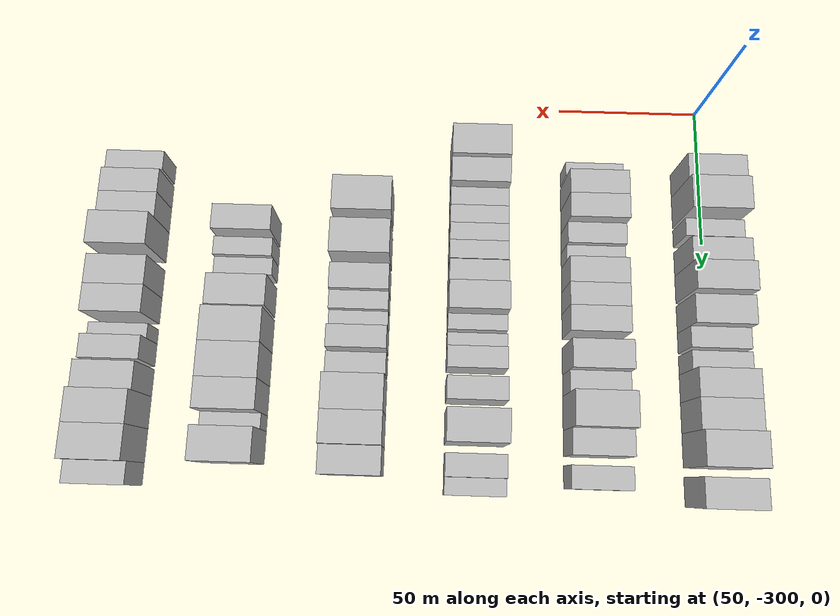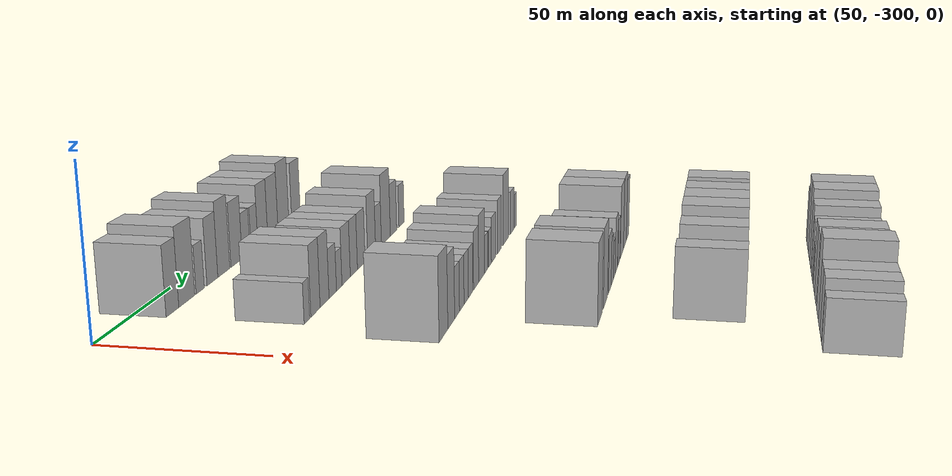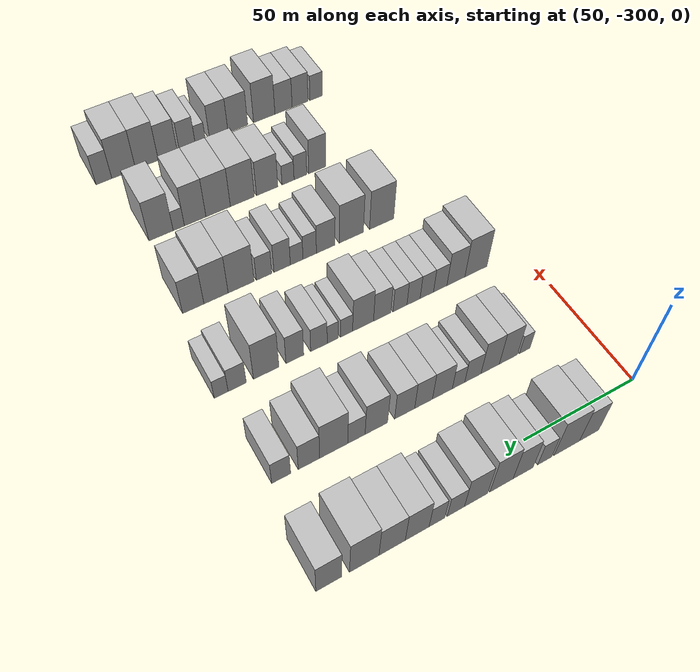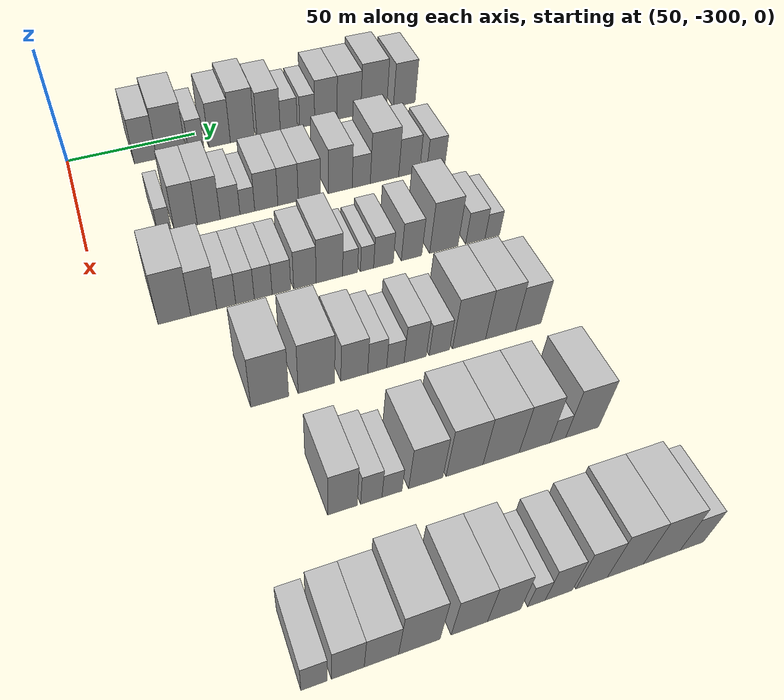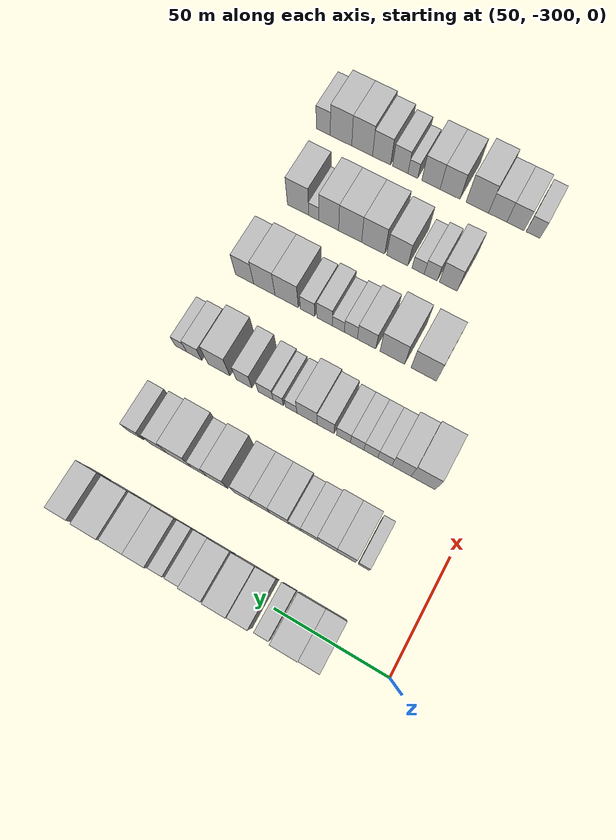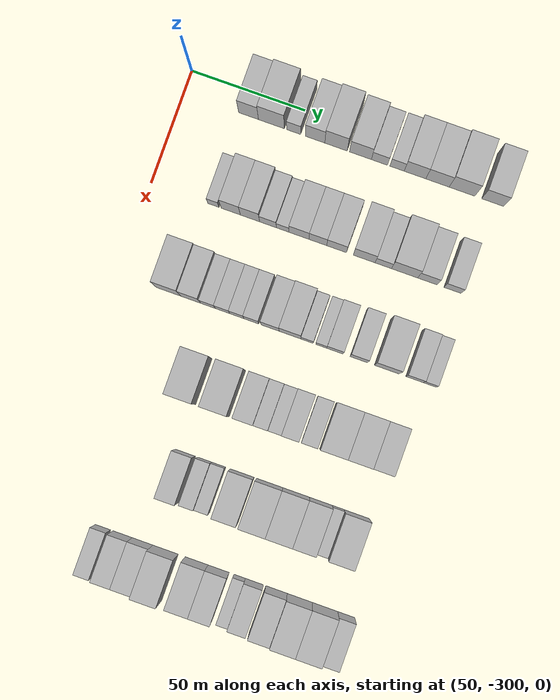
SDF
<sdf version="1.6">
 <world name="default">
  <model name="building_41">
   <static>1</static>
   <pose>50.0000 -271.4610 0 0.000000 0.000000 0.000000</pose>
   <link name="link">
    <pose>0 0 10.50 0 0 0</pose>
    <collision name="collision"><geometry><box><size>20.0000 8.7205 21.0000</size></box></geometry></collision>
    <visual name="visual">
     <cast_shadows>0</cast_shadows>
     <geometry><box><size>20.0000 8.7205 21.0000</size></box></geometry>
     <material>
      <script>
       <uri>model://HANNAS_wall/materials/scripts</uri>
       <uri>model://HANNAS_wall/materials/textures</uri>
       <name>vrc/HANNAS_wall</name>
      </script>
     </material>
    </visual>
   </link>
  </model>
  <model name="building_42">
   <static>1</static>
   <pose>50.0000 -261.3814 0 0.000000 0.000000 0.000000</pose>
   <link name="link">
    <pose>0 0 12.00 0 0 0</pose>
    <collision name="collision"><geometry><box><size>20.0000 11.4386 24.0000</size></box></geometry></collision>
    <visual name="visual">
     <cast_shadows>0</cast_shadows>
     <geometry><box><size>20.0000 11.4386 24.0000</size></box></geometry>
     <material>
      <script>
       <uri>model://HANNAS_wall/materials/scripts</uri>
       <uri>model://HANNAS_wall/materials/textures</uri>
       <name>vrc/HANNAS_wall</name>
      </script>
     </material>
    </visual>
   </link>
  </model>
  <model name="building_43">
   <static>1</static>
   <pose>50.0000 -251.5604 0 0.000000 0.000000 0.000000</pose>
   <link name="link">
    <pose>0 0 7.50 0 0 0</pose>
    <collision name="collision"><geometry><box><size>20.0000 6.2033 15.0000</size></box></geometry></collision>
    <visual name="visual">
     <cast_shadows>0</cast_shadows>
     <geometry><box><size>20.0000 6.2033 15.0000</size></box></geometry>
     <material>
      <script>
       <uri>model://HANNAS_wall/materials/scripts</uri>
       <uri>model://HANNAS_wall/materials/textures</uri>
       <name>vrc/HANNAS_wall</name>
      </script>
     </material>
    </visual>
   </link>
  </model>
  <model name="building_44">
   <static>1</static>
   <pose>50.0000 -242.1434 0 0.000000 0.000000 0.000000</pose>
   <link name="link">
    <pose>0 0 10.50 0 0 0</pose>
    <collision name="collision"><geometry><box><size>20.0000 8.6308 21.0000</size></box></geometry></collision>
    <visual name="visual">
     <cast_shadows>0</cast_shadows>
     <geometry><box><size>20.0000 8.6308 21.0000</size></box></geometry>
     <material>
      <script>
       <uri>model://HANNAS_wall/materials/scripts</uri>
       <uri>model://HANNAS_wall/materials/textures</uri>
       <name>vrc/HANNAS_wall</name>
      </script>
     </material>
    </visual>
   </link>
  </model>
  <model name="building_45">
   <static>1</static>
   <pose>50.0000 -232.9112 0 0.000000 0.000000 0.000000</pose>
   <link name="link">
    <pose>0 0 12.00 0 0 0</pose>
    <collision name="collision"><geometry><box><size>20.0000 9.8335 24.0000</size></box></geometry></collision>
    <visual name="visual">
     <cast_shadows>0</cast_shadows>
     <geometry><box><size>20.0000 9.8335 24.0000</size></box></geometry>
     <material>
      <script>
       <uri>model://HANNAS_wall/materials/scripts</uri>
       <uri>model://HANNAS_wall/materials/textures</uri>
       <name>vrc/HANNAS_wall</name>
      </script>
     </material>
    </visual>
   </link>
  </model>
  <model name="building_46">
   <static>1</static>
   <pose>50.0000 -222.1742 0 0.000000 0.000000 0.000000</pose>
   <link name="link">
    <pose>0 0 10.50 0 0 0</pose>
    <collision name="collision"><geometry><box><size>20.0000 9.6407 21.0000</size></box></geometry></collision>
    <visual name="visual">
     <cast_shadows>0</cast_shadows>
     <geometry><box><size>20.0000 9.6407 21.0000</size></box></geometry>
     <material>
      <script>
       <uri>model://HANNAS_wall/materials/scripts</uri>
       <uri>model://HANNAS_wall/materials/textures</uri>
       <name>vrc/HANNAS_wall</name>
      </script>
     </material>
    </visual>
   </link>
  </model>
  <model name="building_47">
   <static>1</static>
   <pose>50.0000 -213.8160 0 0.000000 0.000000 0.000000</pose>
   <link name="link">
    <pose>0 0 7.50 0 0 0</pose>
    <collision name="collision"><geometry><box><size>20.0000 7.0757 15.0000</size></box></geometry></collision>
    <visual name="visual">
     <cast_shadows>0</cast_shadows>
     <geometry><box><size>20.0000 7.0757 15.0000</size></box></geometry>
     <material>
      <script>
       <uri>model://HANNAS_wall/materials/scripts</uri>
       <uri>model://HANNAS_wall/materials/textures</uri>
       <name>vrc/HANNAS_wall</name>
      </script>
     </material>
    </visual>
   </link>
  </model>
  <model name="building_48">
   <static>1</static>
   <pose>50.0000 -206.1168 0 0.000000 0.000000 0.000000</pose>
   <link name="link">
    <pose>0 0 7.50 0 0 0</pose>
    <collision name="collision"><geometry><box><size>20.0000 6.3227 15.0000</size></box></geometry></collision>
    <visual name="visual">
     <cast_shadows>0</cast_shadows>
     <geometry><box><size>20.0000 6.3227 15.0000</size></box></geometry>
     <material>
      <script>
       <uri>model://HANNAS_wall/materials/scripts</uri>
       <uri>model://HANNAS_wall/materials/textures</uri>
       <name>vrc/HANNAS_wall</name>
      </script>
     </material>
    </visual>
   </link>
  </model>
  <model name="building_49">
   <static>1</static>
   <pose>50.0000 -198.2082 0 0.000000 0.000000 0.000000</pose>
   <link name="link">
    <pose>0 0 10.50 0 0 0</pose>
    <collision name="collision"><geometry><box><size>20.0000 9.4945 21.0000</size></box></geometry></collision>
    <visual name="visual">
     <cast_shadows>0</cast_shadows>
     <geometry><box><size>20.0000 9.4945 21.0000</size></box></geometry>
     <material>
      <script>
       <uri>model://HANNAS_wall/materials/scripts</uri>
       <uri>model://HANNAS_wall/materials/textures</uri>
       <name>vrc/HANNAS_wall</name>
      </script>
     </material>
    </visual>
   </link>
  </model>
  <model name="building_50">
   <static>1</static>
   <pose>50.0000 -188.3169 0 0.000000 0.000000 0.000000</pose>
   <link name="link">
    <pose>0 0 10.50 0 0 0</pose>
    <collision name="collision"><geometry><box><size>20.0000 10.2882 21.0000</size></box></geometry></collision>
    <visual name="visual">
     <cast_shadows>0</cast_shadows>
     <geometry><box><size>20.0000 10.2882 21.0000</size></box></geometry>
     <material>
      <script>
       <uri>model://HANNAS_wall/materials/scripts</uri>
       <uri>model://HANNAS_wall/materials/textures</uri>
       <name>vrc/HANNAS_wall</name>
      </script>
     </material>
    </visual>
   </link>
  </model>
  <model name="building_51">
   <static>1</static>
   <pose>50.0000 -177.5266 0 0.000000 0.000000 0.000000</pose>
   <link name="link">
    <pose>0 0 12.00 0 0 0</pose>
    <collision name="collision"><geometry><box><size>20.0000 11.2924 24.0000</size></box></geometry></collision>
    <visual name="visual">
     <cast_shadows>0</cast_shadows>
     <geometry><box><size>20.0000 11.2924 24.0000</size></box></geometry>
     <material>
      <script>
       <uri>model://HANNAS_wall/materials/scripts</uri>
       <uri>model://HANNAS_wall/materials/textures</uri>
       <name>vrc/HANNAS_wall</name>
      </script>
     </material>
    </visual>
   </link>
  </model>
  <model name="building_52">
   <static>1</static>
   <pose>50.0000 -164.0788 0 0.000000 0.000000 0.000000</pose>
   <link name="link">
    <pose>0 0 10.50 0 0 0</pose>
    <collision name="collision"><geometry><box><size>20.0000 9.6032 21.0000</size></box></geometry></collision>
    <visual name="visual">
     <cast_shadows>0</cast_shadows>
     <geometry><box><size>20.0000 9.6032 21.0000</size></box></geometry>
     <material>
      <script>
       <uri>model://HANNAS_wall/materials/scripts</uri>
       <uri>model://HANNAS_wall/materials/textures</uri>
       <name>vrc/HANNAS_wall</name>
      </script>
     </material>
    </visual>
   </link>
  </model>
  <model name="building_179">
   <static>1</static>
   <pose>90.0000 -272.4818 0 0.000000 0.000000 0.000000</pose>
   <link name="link">
    <pose>0 0 6.00 0 0 0</pose>
    <collision name="collision"><geometry><box><size>20.0000 4.8842 12.0000</size></box></geometry></collision>
    <visual name="visual">
     <cast_shadows>0</cast_shadows>
     <geometry><box><size>20.0000 4.8842 12.0000</size></box></geometry>
     <material>
      <script>
       <uri>model://HANNAS_wall/materials/scripts</uri>
       <uri>model://HANNAS_wall/materials/textures</uri>
       <name>vrc/HANNAS_wall</name>
      </script>
     </material>
    </visual>
   </link>
  </model>
  <model name="building_180">
   <static>1</static>
   <pose>90.0000 -264.8358 0 0.000000 0.000000 0.000000</pose>
   <link name="link">
    <pose>0 0 10.50 0 0 0</pose>
    <collision name="collision"><geometry><box><size>20.0000 8.4078 21.0000</size></box></geometry></collision>
    <visual name="visual">
     <cast_shadows>0</cast_shadows>
     <geometry><box><size>20.0000 8.4078 21.0000</size></box></geometry>
     <material>
      <script>
       <uri>model://HANNAS_wall/materials/scripts</uri>
       <uri>model://HANNAS_wall/materials/textures</uri>
       <name>vrc/HANNAS_wall</name>
      </script>
     </material>
    </visual>
   </link>
  </model>
  <model name="building_181">
   <static>1</static>
   <pose>90.0000 -256.4096 0 0.000000 0.000000 0.000000</pose>
   <link name="link">
    <pose>0 0 10.50 0 0 0</pose>
    <collision name="collision"><geometry><box><size>20.0000 8.4447 21.0000</size></box></geometry></collision>
    <visual name="visual">
     <cast_shadows>0</cast_shadows>
     <geometry><box><size>20.0000 8.4447 21.0000</size></box></geometry>
     <material>
      <script>
       <uri>model://HANNAS_wall/materials/scripts</uri>
       <uri>model://HANNAS_wall/materials/textures</uri>
       <name>vrc/HANNAS_wall</name>
      </script>
     </material>
    </visual>
   </link>
  </model>
  <model name="building_182">
   <static>1</static>
   <pose>90.0000 -248.5168 0 0.000000 0.000000 0.000000</pose>
   <link name="link">
    <pose>0 0 7.50 0 0 0</pose>
    <collision name="collision"><geometry><box><size>20.0000 7.3410 15.0000</size></box></geometry></collision>
    <visual name="visual">
     <cast_shadows>0</cast_shadows>
     <geometry><box><size>20.0000 7.3410 15.0000</size></box></geometry>
     <material>
      <script>
       <uri>model://HANNAS_wall/materials/scripts</uri>
       <uri>model://HANNAS_wall/materials/textures</uri>
       <name>vrc/HANNAS_wall</name>
      </script>
     </material>
    </visual>
   </link>
  </model>
  <model name="building_183">
   <static>1</static>
   <pose>90.0000 -242.0712 0 0.000000 0.000000 0.000000</pose>
   <link name="link">
    <pose>0 0 6.00 0 0 0</pose>
    <collision name="collision"><geometry><box><size>20.0000 5.5502 12.0000</size></box></geometry></collision>
    <visual name="visual">
     <cast_shadows>0</cast_shadows>
     <geometry><box><size>20.0000 5.5502 12.0000</size></box></geometry>
     <material>
      <script>
       <uri>model://HANNAS_wall/materials/scripts</uri>
       <uri>model://HANNAS_wall/materials/textures</uri>
       <name>vrc/HANNAS_wall</name>
      </script>
     </material>
    </visual>
   </link>
  </model>
  <model name="building_184">
   <static>1</static>
   <pose>90.0000 -234.9111 0 0.000000 0.000000 0.000000</pose>
   <link name="link">
    <pose>0 0 9.00 0 0 0</pose>
    <collision name="collision"><geometry><box><size>20.0000 8.7699 18.0000</size></box></geometry></collision>
    <visual name="visual">
     <cast_shadows>0</cast_shadows>
     <geometry><box><size>20.0000 8.7699 18.0000</size></box></geometry>
     <material>
      <script>
       <uri>model://HANNAS_wall/materials/scripts</uri>
       <uri>model://HANNAS_wall/materials/textures</uri>
       <name>vrc/HANNAS_wall</name>
      </script>
     </material>
    </visual>
   </link>
  </model>
  <model name="building_185">
   <static>1</static>
   <pose>90.0000 -226.6335 0 0.000000 0.000000 0.000000</pose>
   <link name="link">
    <pose>0 0 9.00 0 0 0</pose>
    <collision name="collision"><geometry><box><size>20.0000 7.7853 18.0000</size></box></geometry></collision>
    <visual name="visual">
     <cast_shadows>0</cast_shadows>
     <geometry><box><size>20.0000 7.7853 18.0000</size></box></geometry>
     <material>
      <script>
       <uri>model://HANNAS_wall/materials/scripts</uri>
       <uri>model://HANNAS_wall/materials/textures</uri>
       <name>vrc/HANNAS_wall</name>
      </script>
     </material>
    </visual>
   </link>
  </model>
  <model name="building_186">
   <static>1</static>
   <pose>90.0000 -218.4238 0 0.000000 0.000000 0.000000</pose>
   <link name="link">
    <pose>0 0 9.00 0 0 0</pose>
    <collision name="collision"><geometry><box><size>20.0000 8.6341 18.0000</size></box></geometry></collision>
    <visual name="visual">
     <cast_shadows>0</cast_shadows>
     <geometry><box><size>20.0000 8.6341 18.0000</size></box></geometry>
     <material>
      <script>
       <uri>model://HANNAS_wall/materials/scripts</uri>
       <uri>model://HANNAS_wall/materials/textures</uri>
       <name>vrc/HANNAS_wall</name>
      </script>
     </material>
    </visual>
   </link>
  </model>
  <model name="building_187">
   <static>1</static>
   <pose>90.0000 -206.3648 0 0.000000 0.000000 0.000000</pose>
   <link name="link">
    <pose>0 0 10.50 0 0 0</pose>
    <collision name="collision"><geometry><box><size>20.0000 9.4840 21.0000</size></box></geometry></collision>
    <visual name="visual">
     <cast_shadows>0</cast_shadows>
     <geometry><box><size>20.0000 9.4840 21.0000</size></box></geometry>
     <material>
      <script>
       <uri>model://HANNAS_wall/materials/scripts</uri>
       <uri>model://HANNAS_wall/materials/textures</uri>
       <name>vrc/HANNAS_wall</name>
      </script>
     </material>
    </visual>
   </link>
  </model>
  <model name="building_188">
   <static>1</static>
   <pose>90.0000 -198.0180 0 0.000000 0.000000 0.000000</pose>
   <link name="link">
    <pose>0 0 7.50 0 0 0</pose>
    <collision name="collision"><geometry><box><size>20.0000 7.2096 15.0000</size></box></geometry></collision>
    <visual name="visual">
     <cast_shadows>0</cast_shadows>
     <geometry><box><size>20.0000 7.2096 15.0000</size></box></geometry>
     <material>
      <script>
       <uri>model://HANNAS_wall/materials/scripts</uri>
       <uri>model://HANNAS_wall/materials/textures</uri>
       <name>vrc/HANNAS_wall</name>
      </script>
     </material>
    </visual>
   </link>
  </model>
  <model name="building_189">
   <static>1</static>
   <pose>90.0000 -188.6797 0 0.000000 0.000000 0.000000</pose>
   <link name="link">
    <pose>0 0 12.00 0 0 0</pose>
    <collision name="collision"><geometry><box><size>20.0000 11.4671 24.0000</size></box></geometry></collision>
    <visual name="visual">
     <cast_shadows>0</cast_shadows>
     <geometry><box><size>20.0000 11.4671 24.0000</size></box></geometry>
     <material>
      <script>
       <uri>model://HANNAS_wall/materials/scripts</uri>
       <uri>model://HANNAS_wall/materials/textures</uri>
       <name>vrc/HANNAS_wall</name>
      </script>
     </material>
    </visual>
   </link>
  </model>
  <model name="building_190">
   <static>1</static>
   <pose>90.0000 -178.6611 0 0.000000 0.000000 0.000000</pose>
   <link name="link">
    <pose>0 0 9.00 0 0 0</pose>
    <collision name="collision"><geometry><box><size>20.0000 8.5700 18.0000</size></box></geometry></collision>
    <visual name="visual">
     <cast_shadows>0</cast_shadows>
     <geometry><box><size>20.0000 8.5700 18.0000</size></box></geometry>
     <material>
      <script>
       <uri>model://HANNAS_wall/materials/scripts</uri>
       <uri>model://HANNAS_wall/materials/textures</uri>
       <name>vrc/HANNAS_wall</name>
      </script>
     </material>
    </visual>
   </link>
  </model>
  <model name="building_191">
   <static>1</static>
   <pose>90.0000 -167.6367 0 0.000000 0.000000 0.000000</pose>
   <link name="link">
    <pose>0 0 7.50 0 0 0</pose>
    <collision name="collision"><geometry><box><size>20.0000 7.4789 15.0000</size></box></geometry></collision>
    <visual name="visual">
     <cast_shadows>0</cast_shadows>
     <geometry><box><size>20.0000 7.4789 15.0000</size></box></geometry>
     <material>
      <script>
       <uri>model://HANNAS_wall/materials/scripts</uri>
       <uri>model://HANNAS_wall/materials/textures</uri>
       <name>vrc/HANNAS_wall</name>
      </script>
     </material>
    </visual>
   </link>
  </model>
  <model name="building_312">
   <static>1</static>
   <pose>130.0000 -277.7160 0 0.000000 0.000000 0.000000</pose>
   <link name="link">
    <pose>0 0 12.00 0 0 0</pose>
    <collision name="collision"><geometry><box><size>20.0000 10.7819 24.0000</size></box></geometry></collision>
    <visual name="visual">
     <cast_shadows>0</cast_shadows>
     <geometry><box><size>20.0000 10.7819 24.0000</size></box></geometry>
     <material>
      <script>
       <uri>model://HANNAS_wall/materials/scripts</uri>
       <uri>model://HANNAS_wall/materials/textures</uri>
       <name>vrc/HANNAS_wall</name>
      </script>
     </material>
    </visual>
   </link>
  </model>
  <model name="building_313">
   <static>1</static>
   <pose>130.0000 -267.9741 0 0.000000 0.000000 0.000000</pose>
   <link name="link">
    <pose>0 0 10.50 0 0 0</pose>
    <collision name="collision"><geometry><box><size>20.0000 8.7020 21.0000</size></box></geometry></collision>
    <visual name="visual">
     <cast_shadows>0</cast_shadows>
     <geometry><box><size>20.0000 8.7020 21.0000</size></box></geometry>
     <material>
      <script>
       <uri>model://HANNAS_wall/materials/scripts</uri>
       <uri>model://HANNAS_wall/materials/textures</uri>
       <name>vrc/HANNAS_wall</name>
      </script>
     </material>
    </visual>
   </link>
  </model>
  <model name="building_314">
   <static>1</static>
   <pose>130.0000 -260.4060 0 0.000000 0.000000 0.000000</pose>
   <link name="link">
    <pose>0 0 7.50 0 0 0</pose>
    <collision name="collision"><geometry><box><size>20.0000 6.4342 15.0000</size></box></geometry></collision>
    <visual name="visual">
     <cast_shadows>0</cast_shadows>
     <geometry><box><size>20.0000 6.4342 15.0000</size></box></geometry>
     <material>
      <script>
       <uri>model://HANNAS_wall/materials/scripts</uri>
       <uri>model://HANNAS_wall/materials/textures</uri>
       <name>vrc/HANNAS_wall</name>
      </script>
     </material>
    </visual>
   </link>
  </model>
  <model name="building_315">
   <static>1</static>
   <pose>130.0000 -254.0186 0 0.000000 0.000000 0.000000</pose>
   <link name="link">
    <pose>0 0 7.50 0 0 0</pose>
    <collision name="collision"><geometry><box><size>20.0000 6.3407 15.0000</size></box></geometry></collision>
    <visual name="visual">
     <cast_shadows>0</cast_shadows>
     <geometry><box><size>20.0000 6.3407 15.0000</size></box></geometry>
     <material>
      <script>
       <uri>model://HANNAS_wall/materials/scripts</uri>
       <uri>model://HANNAS_wall/materials/textures</uri>
       <name>vrc/HANNAS_wall</name>
      </script>
     </material>
    </visual>
   </link>
  </model>
  <model name="building_316">
   <static>1</static>
   <pose>130.0000 -247.7734 0 0.000000 0.000000 0.000000</pose>
   <link name="link">
    <pose>0 0 7.50 0 0 0</pose>
    <collision name="collision"><geometry><box><size>20.0000 6.1497 15.0000</size></box></geometry></collision>
    <visual name="visual">
     <cast_shadows>0</cast_shadows>
     <geometry><box><size>20.0000 6.1497 15.0000</size></box></geometry>
     <material>
      <script>
       <uri>model://HANNAS_wall/materials/scripts</uri>
       <uri>model://HANNAS_wall/materials/textures</uri>
       <name>vrc/HANNAS_wall</name>
      </script>
     </material>
    </visual>
   </link>
  </model>
  <model name="building_317">
   <static>1</static>
   <pose>130.0000 -241.4448 0 0.000000 0.000000 0.000000</pose>
   <link name="link">
    <pose>0 0 7.50 0 0 0</pose>
    <collision name="collision"><geometry><box><size>20.0000 6.5075 15.0000</size></box></geometry></collision>
    <visual name="visual">
     <cast_shadows>0</cast_shadows>
     <geometry><box><size>20.0000 6.5075 15.0000</size></box></geometry>
     <material>
      <script>
       <uri>model://HANNAS_wall/materials/scripts</uri>
       <uri>model://HANNAS_wall/materials/textures</uri>
       <name>vrc/HANNAS_wall</name>
      </script>
     </material>
    </visual>
   </link>
  </model>
  <model name="building_318">
   <static>1</static>
   <pose>130.0000 -233.2370 0 0.000000 0.000000 0.000000</pose>
   <link name="link">
    <pose>0 0 9.00 0 0 0</pose>
    <collision name="collision"><geometry><box><size>20.0000 7.9081 18.0000</size></box></geometry></collision>
    <visual name="visual">
     <cast_shadows>0</cast_shadows>
     <geometry><box><size>20.0000 7.9081 18.0000</size></box></geometry>
     <material>
      <script>
       <uri>model://HANNAS_wall/materials/scripts</uri>
       <uri>model://HANNAS_wall/materials/textures</uri>
       <name>vrc/HANNAS_wall</name>
      </script>
     </material>
    </visual>
   </link>
  </model>
  <model name="building_319">
   <static>1</static>
   <pose>130.0000 -224.5493 0 0.000000 0.000000 0.000000</pose>
   <link name="link">
    <pose>0 0 10.50 0 0 0</pose>
    <collision name="collision"><geometry><box><size>20.0000 9.4673 21.0000</size></box></geometry></collision>
    <visual name="visual">
     <cast_shadows>0</cast_shadows>
     <geometry><box><size>20.0000 9.4673 21.0000</size></box></geometry>
     <material>
      <script>
       <uri>model://HANNAS_wall/materials/scripts</uri>
       <uri>model://HANNAS_wall/materials/textures</uri>
       <name>vrc/HANNAS_wall</name>
      </script>
     </material>
    </visual>
   </link>
  </model>
  <model name="building_320">
   <static>1</static>
   <pose>130.0000 -217.0905 0 0.000000 0.000000 0.000000</pose>
   <link name="link">
    <pose>0 0 6.00 0 0 0</pose>
    <collision name="collision"><geometry><box><size>20.0000 5.4501 12.0000</size></box></geometry></collision>
    <visual name="visual">
     <cast_shadows>0</cast_shadows>
     <geometry><box><size>20.0000 5.4501 12.0000</size></box></geometry>
     <material>
      <script>
       <uri>model://HANNAS_wall/materials/scripts</uri>
       <uri>model://HANNAS_wall/materials/textures</uri>
       <name>vrc/HANNAS_wall</name>
      </script>
     </material>
    </visual>
   </link>
  </model>
  <model name="building_321">
   <static>1</static>
   <pose>130.0000 -210.9548 0 0.000000 0.000000 0.000000</pose>
   <link name="link">
    <pose>0 0 6.00 0 0 0</pose>
    <collision name="collision"><geometry><box><size>20.0000 4.8213 12.0000</size></box></geometry></collision>
    <visual name="visual">
     <cast_shadows>0</cast_shadows>
     <geometry><box><size>20.0000 4.8213 12.0000</size></box></geometry>
     <material>
      <script>
       <uri>model://HANNAS_wall/materials/scripts</uri>
       <uri>model://HANNAS_wall/materials/textures</uri>
       <name>vrc/HANNAS_wall</name>
      </script>
     </material>
    </visual>
   </link>
  </model>
  <model name="building_322">
   <static>1</static>
   <pose>130.0000 -204.9297 0 0.000000 0.000000 0.000000</pose>
   <link name="link">
    <pose>0 0 7.50 0 0 0</pose>
    <collision name="collision"><geometry><box><size>20.0000 7.2290 15.0000</size></box></geometry></collision>
    <visual name="visual">
     <cast_shadows>0</cast_shadows>
     <geometry><box><size>20.0000 7.2290 15.0000</size></box></geometry>
     <material>
      <script>
       <uri>model://HANNAS_wall/materials/scripts</uri>
       <uri>model://HANNAS_wall/materials/textures</uri>
       <name>vrc/HANNAS_wall</name>
      </script>
     </material>
    </visual>
   </link>
  </model>
  <model name="building_323">
   <static>1</static>
   <pose>130.0000 -194.5045 0 0.000000 0.000000 0.000000</pose>
   <link name="link">
    <pose>0 0 9.00 0 0 0</pose>
    <collision name="collision"><geometry><box><size>20.0000 7.6215 18.0000</size></box></geometry></collision>
    <visual name="visual">
     <cast_shadows>0</cast_shadows>
     <geometry><box><size>20.0000 7.6215 18.0000</size></box></geometry>
     <material>
      <script>
       <uri>model://HANNAS_wall/materials/scripts</uri>
       <uri>model://HANNAS_wall/materials/textures</uri>
       <name>vrc/HANNAS_wall</name>
      </script>
     </material>
    </visual>
   </link>
  </model>
  <model name="building_324">
   <static>1</static>
   <pose>130.0000 -182.3283 0 0.000000 0.000000 0.000000</pose>
   <link name="link">
    <pose>0 0 12.00 0 0 0</pose>
    <collision name="collision"><geometry><box><size>20.0000 10.7308 24.0000</size></box></geometry></collision>
    <visual name="visual">
     <cast_shadows>0</cast_shadows>
     <geometry><box><size>20.0000 10.7308 24.0000</size></box></geometry>
     <material>
      <script>
       <uri>model://HANNAS_wall/materials/scripts</uri>
       <uri>model://HANNAS_wall/materials/textures</uri>
       <name>vrc/HANNAS_wall</name>
      </script>
     </material>
    </visual>
   </link>
  </model>
  <model name="building_325">
   <static>1</static>
   <pose>130.0000 -170.2242 0 0.000000 0.000000 0.000000</pose>
   <link name="link">
    <pose>0 0 7.50 0 0 0</pose>
    <collision name="collision"><geometry><box><size>20.0000 7.4775 15.0000</size></box></geometry></collision>
    <visual name="visual">
     <cast_shadows>0</cast_shadows>
     <geometry><box><size>20.0000 7.4775 15.0000</size></box></geometry>
     <material>
      <script>
       <uri>model://HANNAS_wall/materials/scripts</uri>
       <uri>model://HANNAS_wall/materials/textures</uri>
       <name>vrc/HANNAS_wall</name>
      </script>
     </material>
    </visual>
   </link>
  </model>
  <model name="building_326">
   <static>1</static>
   <pose>130.0000 -163.6379 0 0.000000 0.000000 0.000000</pose>
   <link name="link">
    <pose>0 0 6.00 0 0 0</pose>
    <collision name="collision"><geometry><box><size>20.0000 5.6953 12.0000</size></box></geometry></collision>
    <visual name="visual">
     <cast_shadows>0</cast_shadows>
     <geometry><box><size>20.0000 5.6953 12.0000</size></box></geometry>
     <material>
      <script>
       <uri>model://HANNAS_wall/materials/scripts</uri>
       <uri>model://HANNAS_wall/materials/textures</uri>
       <name>vrc/HANNAS_wall</name>
      </script>
     </material>
    </visual>
   </link>
  </model>
  <model name="building_438">
   <static>1</static>
   <pose>170.0000 -257.3850 0 0.000000 0.000000 0.000000</pose>
   <link name="link">
    <pose>0 0 12.00 0 0 0</pose>
    <collision name="collision"><geometry><box><size>20.0000 11.8549 24.0000</size></box></geometry></collision>
    <visual name="visual">
     <cast_shadows>0</cast_shadows>
     <geometry><box><size>20.0000 11.8549 24.0000</size></box></geometry>
     <material>
      <script>
       <uri>model://HANNAS_wall/materials/scripts</uri>
       <uri>model://HANNAS_wall/materials/textures</uri>
       <name>vrc/HANNAS_wall</name>
      </script>
     </material>
    </visual>
   </link>
  </model>
  <model name="building_439">
   <static>1</static>
   <pose>170.0000 -242.6180 0 0.000000 0.000000 0.000000</pose>
   <link name="link">
    <pose>0 0 12.00 0 0 0</pose>
    <collision name="collision"><geometry><box><size>20.0000 11.6791 24.0000</size></box></geometry></collision>
    <visual name="visual">
     <cast_shadows>0</cast_shadows>
     <geometry><box><size>20.0000 11.6791 24.0000</size></box></geometry>
     <material>
      <script>
       <uri>model://HANNAS_wall/materials/scripts</uri>
       <uri>model://HANNAS_wall/materials/textures</uri>
       <name>vrc/HANNAS_wall</name>
      </script>
     </material>
    </visual>
   </link>
  </model>
  <model name="building_440">
   <static>1</static>
   <pose>170.0000 -230.3833 0 0.000000 0.000000 0.000000</pose>
   <link name="link">
    <pose>0 0 9.00 0 0 0</pose>
    <collision name="collision"><geometry><box><size>20.0000 8.7902 18.0000</size></box></geometry></collision>
    <visual name="visual">
     <cast_shadows>0</cast_shadows>
     <geometry><box><size>20.0000 8.7902 18.0000</size></box></geometry>
     <material>
      <script>
       <uri>model://HANNAS_wall/materials/scripts</uri>
       <uri>model://HANNAS_wall/materials/textures</uri>
       <name>vrc/HANNAS_wall</name>
      </script>
     </material>
    </visual>
   </link>
  </model>
  <model name="building_441">
   <static>1</static>
   <pose>170.0000 -222.8478 0 0.000000 0.000000 0.000000</pose>
   <link name="link">
    <pose>0 0 7.50 0 0 0</pose>
    <collision name="collision"><geometry><box><size>20.0000 6.2807 15.0000</size></box></geometry></collision>
    <visual name="visual">
     <cast_shadows>0</cast_shadows>
     <geometry><box><size>20.0000 6.2807 15.0000</size></box></geometry>
     <material>
      <script>
       <uri>model://HANNAS_wall/materials/scripts</uri>
       <uri>model://HANNAS_wall/materials/textures</uri>
       <name>vrc/HANNAS_wall</name>
      </script>
     </material>
    </visual>
   </link>
  </model>
  <model name="building_442">
   <static>1</static>
   <pose>170.0000 -216.7918 0 0.000000 0.000000 0.000000</pose>
   <link name="link">
    <pose>0 0 6.00 0 0 0</pose>
    <collision name="collision"><geometry><box><size>20.0000 5.8314 12.0000</size></box></geometry></collision>
    <visual name="visual">
     <cast_shadows>0</cast_shadows>
     <geometry><box><size>20.0000 5.8314 12.0000</size></box></geometry>
     <material>
      <script>
       <uri>model://HANNAS_wall/materials/scripts</uri>
       <uri>model://HANNAS_wall/materials/textures</uri>
       <name>vrc/HANNAS_wall</name>
      </script>
     </material>
    </visual>
   </link>
  </model>
  <model name="building_443">
   <static>1</static>
   <pose>170.0000 -210.1128 0 0.000000 0.000000 0.000000</pose>
   <link name="link">
    <pose>0 0 9.00 0 0 0</pose>
    <collision name="collision"><geometry><box><size>20.0000 7.5265 18.0000</size></box></geometry></collision>
    <visual name="visual">
     <cast_shadows>0</cast_shadows>
     <geometry><box><size>20.0000 7.5265 18.0000</size></box></geometry>
     <material>
      <script>
       <uri>model://HANNAS_wall/materials/scripts</uri>
       <uri>model://HANNAS_wall/materials/textures</uri>
       <name>vrc/HANNAS_wall</name>
      </script>
     </material>
    </visual>
   </link>
  </model>
  <model name="building_444">
   <static>1</static>
   <pose>170.0000 -201.8534 0 0.000000 0.000000 0.000000</pose>
   <link name="link">
    <pose>0 0 7.50 0 0 0</pose>
    <collision name="collision"><geometry><box><size>20.0000 6.9923 15.0000</size></box></geometry></collision>
    <visual name="visual">
     <cast_shadows>0</cast_shadows>
     <geometry><box><size>20.0000 6.9923 15.0000</size></box></geometry>
     <material>
      <script>
       <uri>model://HANNAS_wall/materials/scripts</uri>
       <uri>model://HANNAS_wall/materials/textures</uri>
       <name>vrc/HANNAS_wall</name>
      </script>
     </material>
    </visual>
   </link>
  </model>
  <model name="building_445">
   <static>1</static>
   <pose>170.0000 -191.5840 0 0.000000 0.000000 0.000000</pose>
   <link name="link">
    <pose>0 0 12.00 0 0 0</pose>
    <collision name="collision"><geometry><box><size>20.0000 11.5464 24.0000</size></box></geometry></collision>
    <visual name="visual">
     <cast_shadows>0</cast_shadows>
     <geometry><box><size>20.0000 11.5464 24.0000</size></box></geometry>
     <material>
      <script>
       <uri>model://HANNAS_wall/materials/scripts</uri>
       <uri>model://HANNAS_wall/materials/textures</uri>
       <name>vrc/HANNAS_wall</name>
      </script>
     </material>
    </visual>
   </link>
  </model>
  <model name="building_446">
   <static>1</static>
   <pose>170.0000 -180.5014 0 0.000000 0.000000 0.000000</pose>
   <link name="link">
    <pose>0 0 12.00 0 0 0</pose>
    <collision name="collision"><geometry><box><size>20.0000 10.6188 24.0000</size></box></geometry></collision>
    <visual name="visual">
     <cast_shadows>0</cast_shadows>
     <geometry><box><size>20.0000 10.6188 24.0000</size></box></geometry>
     <material>
      <script>
       <uri>model://HANNAS_wall/materials/scripts</uri>
       <uri>model://HANNAS_wall/materials/textures</uri>
       <name>vrc/HANNAS_wall</name>
      </script>
     </material>
    </visual>
   </link>
  </model>
  <model name="building_447">
   <static>1</static>
   <pose>170.0000 -170.5951 0 0.000000 0.000000 0.000000</pose>
   <link name="link">
    <pose>0 0 10.50 0 0 0</pose>
    <collision name="collision"><geometry><box><size>20.0000 9.1938 21.0000</size></box></geometry></collision>
    <visual name="visual">
     <cast_shadows>0</cast_shadows>
     <geometry><box><size>20.0000 9.1938 21.0000</size></box></geometry>
     <material>
      <script>
       <uri>model://HANNAS_wall/materials/scripts</uri>
       <uri>model://HANNAS_wall/materials/textures</uri>
       <name>vrc/HANNAS_wall</name>
      </script>
     </material>
    </visual>
   </link>
  </model>
  <model name="building_567">
   <static>1</static>
   <pose>210.0000 -248.6076 0 0.000000 0.000000 0.000000</pose>
   <link name="link">
    <pose>0 0 10.50 0 0 0</pose>
    <collision name="collision"><geometry><box><size>20.0000 8.5886 21.0000</size></box></geometry></collision>
    <visual name="visual">
     <cast_shadows>0</cast_shadows>
     <geometry><box><size>20.0000 8.5886 21.0000</size></box></geometry>
     <material>
      <script>
       <uri>model://HANNAS_wall/materials/scripts</uri>
       <uri>model://HANNAS_wall/materials/textures</uri>
       <name>vrc/HANNAS_wall</name>
      </script>
     </material>
    </visual>
   </link>
  </model>
  <model name="building_568">
   <static>1</static>
   <pose>210.0000 -240.1623 0 0.000000 0.000000 0.000000</pose>
   <link name="link">
    <pose>0 0 7.50 0 0 0</pose>
    <collision name="collision"><geometry><box><size>20.0000 6.3021 15.0000</size></box></geometry></collision>
    <visual name="visual">
     <cast_shadows>0</cast_shadows>
     <geometry><box><size>20.0000 6.3021 15.0000</size></box></geometry>
     <material>
      <script>
       <uri>model://HANNAS_wall/materials/scripts</uri>
       <uri>model://HANNAS_wall/materials/textures</uri>
       <name>vrc/HANNAS_wall</name>
      </script>
     </material>
    </visual>
   </link>
  </model>
  <model name="building_569">
   <static>1</static>
   <pose>210.0000 -234.0338 0 0.000000 0.000000 0.000000</pose>
   <link name="link">
    <pose>0 0 6.00 0 0 0</pose>
    <collision name="collision"><geometry><box><size>20.0000 5.9550 12.0000</size></box></geometry></collision>
    <visual name="visual">
     <cast_shadows>0</cast_shadows>
     <geometry><box><size>20.0000 5.9550 12.0000</size></box></geometry>
     <material>
      <script>
       <uri>model://HANNAS_wall/materials/scripts</uri>
       <uri>model://HANNAS_wall/materials/textures</uri>
       <name>vrc/HANNAS_wall</name>
      </script>
     </material>
    </visual>
   </link>
  </model>
  <model name="building_570">
   <static>1</static>
   <pose>210.0000 -223.8573 0 0.000000 0.000000 0.000000</pose>
   <link name="link">
    <pose>0 0 10.50 0 0 0</pose>
    <collision name="collision"><geometry><box><size>20.0000 10.3980 21.0000</size></box></geometry></collision>
    <visual name="visual">
     <cast_shadows>0</cast_shadows>
     <geometry><box><size>20.0000 10.3980 21.0000</size></box></geometry>
     <material>
      <script>
       <uri>model://HANNAS_wall/materials/scripts</uri>
       <uri>model://HANNAS_wall/materials/textures</uri>
       <name>vrc/HANNAS_wall</name>
      </script>
     </material>
    </visual>
   </link>
  </model>
  <model name="building_571">
   <static>1</static>
   <pose>210.0000 -211.9260 0 0.000000 0.000000 0.000000</pose>
   <link name="link">
    <pose>0 0 12.00 0 0 0</pose>
    <collision name="collision"><geometry><box><size>20.0000 11.4645 24.0000</size></box></geometry></collision>
    <visual name="visual">
     <cast_shadows>0</cast_shadows>
     <geometry><box><size>20.0000 11.4645 24.0000</size></box></geometry>
     <material>
      <script>
       <uri>model://HANNAS_wall/materials/scripts</uri>
       <uri>model://HANNAS_wall/materials/textures</uri>
       <name>vrc/HANNAS_wall</name>
      </script>
     </material>
    </visual>
   </link>
  </model>
  <model name="building_572">
   <static>1</static>
   <pose>210.0000 -200.4536 0 0.000000 0.000000 0.000000</pose>
   <link name="link">
    <pose>0 0 12.00 0 0 0</pose>
    <collision name="collision"><geometry><box><size>20.0000 11.4803 24.0000</size></box></geometry></collision>
    <visual name="visual">
     <cast_shadows>0</cast_shadows>
     <geometry><box><size>20.0000 11.4803 24.0000</size></box></geometry>
     <material>
      <script>
       <uri>model://HANNAS_wall/materials/scripts</uri>
       <uri>model://HANNAS_wall/materials/textures</uri>
       <name>vrc/HANNAS_wall</name>
      </script>
     </material>
    </visual>
   </link>
  </model>
  <model name="building_573">
   <static>1</static>
   <pose>210.0000 -189.7488 0 0.000000 0.000000 0.000000</pose>
   <link name="link">
    <pose>0 0 12.00 0 0 0</pose>
    <collision name="collision"><geometry><box><size>20.0000 9.9294 24.0000</size></box></geometry></collision>
    <visual name="visual">
     <cast_shadows>0</cast_shadows>
     <geometry><box><size>20.0000 9.9294 24.0000</size></box></geometry>
     <material>
      <script>
       <uri>model://HANNAS_wall/materials/scripts</uri>
       <uri>model://HANNAS_wall/materials/textures</uri>
       <name>vrc/HANNAS_wall</name>
      </script>
     </material>
    </visual>
   </link>
  </model>
  <model name="building_574">
   <static>1</static>
   <pose>210.0000 -182.2075 0 0.000000 0.000000 0.000000</pose>
   <link name="link">
    <pose>0 0 6.00 0 0 0</pose>
    <collision name="collision"><geometry><box><size>20.0000 5.1531 12.0000</size></box></geometry></collision>
    <visual name="visual">
     <cast_shadows>0</cast_shadows>
     <geometry><box><size>20.0000 5.1531 12.0000</size></box></geometry>
     <material>
      <script>
       <uri>model://HANNAS_wall/materials/scripts</uri>
       <uri>model://HANNAS_wall/materials/textures</uri>
       <name>vrc/HANNAS_wall</name>
      </script>
     </material>
    </visual>
   </link>
  </model>
  <model name="building_575">
   <static>1</static>
   <pose>210.0000 -174.1619 0 0.000000 0.000000 0.000000</pose>
   <link name="link">
    <pose>0 0 12.00 0 0 0</pose>
    <collision name="collision"><geometry><box><size>20.0000 10.9380 24.0000</size></box></geometry></collision>
    <visual name="visual">
     <cast_shadows>0</cast_shadows>
     <geometry><box><size>20.0000 10.9380 24.0000</size></box></geometry>
     <material>
      <script>
       <uri>model://HANNAS_wall/materials/scripts</uri>
       <uri>model://HANNAS_wall/materials/textures</uri>
       <name>vrc/HANNAS_wall</name>
      </script>
     </material>
    </visual>
   </link>
  </model>
  <model name="building_692">
   <static>1</static>
   <pose>250.0000 -270.1569 0 0.000000 0.000000 0.000000</pose>
   <link name="link">
    <pose>0 0 7.50 0 0 0</pose>
    <collision name="collision"><geometry><box><size>20.0000 6.6664 15.0000</size></box></geometry></collision>
    <visual name="visual">
     <cast_shadows>0</cast_shadows>
     <geometry><box><size>20.0000 6.6664 15.0000</size></box></geometry>
     <material>
      <script>
       <uri>model://HANNAS_wall/materials/scripts</uri>
       <uri>model://HANNAS_wall/materials/textures</uri>
       <name>vrc/HANNAS_wall</name>
      </script>
     </material>
    </visual>
   </link>
  </model>
  <model name="building_693">
   <static>1</static>
   <pose>250.0000 -261.6173 0 0.000000 0.000000 0.000000</pose>
   <link name="link">
    <pose>0 0 9.00 0 0 0</pose>
    <collision name="collision"><geometry><box><size>20.0000 8.4129 18.0000</size></box></geometry></collision>
    <visual name="visual">
     <cast_shadows>0</cast_shadows>
     <geometry><box><size>20.0000 8.4129 18.0000</size></box></geometry>
     <material>
      <script>
       <uri>model://HANNAS_wall/materials/scripts</uri>
       <uri>model://HANNAS_wall/materials/textures</uri>
       <name>vrc/HANNAS_wall</name>
      </script>
     </material>
    </visual>
   </link>
  </model>
  <model name="building_694">
   <static>1</static>
   <pose>250.0000 -252.9125 0 0.000000 0.000000 0.000000</pose>
   <link name="link">
    <pose>0 0 9.00 0 0 0</pose>
    <collision name="collision"><geometry><box><size>20.0000 8.9968 18.0000</size></box></geometry></collision>
    <visual name="visual">
     <cast_shadows>0</cast_shadows>
     <geometry><box><size>20.0000 8.9968 18.0000</size></box></geometry>
     <material>
      <script>
       <uri>model://HANNAS_wall/materials/scripts</uri>
       <uri>model://HANNAS_wall/materials/textures</uri>
       <name>vrc/HANNAS_wall</name>
      </script>
     </material>
    </visual>
   </link>
  </model>
  <model name="building_695">
   <static>1</static>
   <pose>250.0000 -242.8904 0 0.000000 0.000000 0.000000</pose>
   <link name="link">
    <pose>0 0 12.00 0 0 0</pose>
    <collision name="collision"><geometry><box><size>20.0000 11.0474 24.0000</size></box></geometry></collision>
    <visual name="visual">
     <cast_shadows>0</cast_shadows>
     <geometry><box><size>20.0000 11.0474 24.0000</size></box></geometry>
     <material>
      <script>
       <uri>model://HANNAS_wall/materials/scripts</uri>
       <uri>model://HANNAS_wall/materials/textures</uri>
       <name>vrc/HANNAS_wall</name>
      </script>
     </material>
    </visual>
   </link>
  </model>
  <model name="building_696">
   <static>1</static>
   <pose>250.0000 -229.3840 0 0.000000 0.000000 0.000000</pose>
   <link name="link">
    <pose>0 0 10.50 0 0 0</pose>
    <collision name="collision"><geometry><box><size>20.0000 9.9655 21.0000</size></box></geometry></collision>
    <visual name="visual">
     <cast_shadows>0</cast_shadows>
     <geometry><box><size>20.0000 9.9655 21.0000</size></box></geometry>
     <material>
      <script>
       <uri>model://HANNAS_wall/materials/scripts</uri>
       <uri>model://HANNAS_wall/materials/textures</uri>
       <name>vrc/HANNAS_wall</name>
      </script>
     </material>
    </visual>
   </link>
  </model>
  <model name="building_697">
   <static>1</static>
   <pose>250.0000 -219.7918 0 0.000000 0.000000 0.000000</pose>
   <link name="link">
    <pose>0 0 10.50 0 0 0</pose>
    <collision name="collision"><geometry><box><size>20.0000 9.2189 21.0000</size></box></geometry></collision>
    <visual name="visual">
     <cast_shadows>0</cast_shadows>
     <geometry><box><size>20.0000 9.2189 21.0000</size></box></geometry>
     <material>
      <script>
       <uri>model://HANNAS_wall/materials/scripts</uri>
       <uri>model://HANNAS_wall/materials/textures</uri>
       <name>vrc/HANNAS_wall</name>
      </script>
     </material>
    </visual>
   </link>
  </model>
  <model name="building_698">
   <static>1</static>
   <pose>250.0000 -210.6779 0 0.000000 0.000000 0.000000</pose>
   <link name="link">
    <pose>0 0 6.00 0 0 0</pose>
    <collision name="collision"><geometry><box><size>20.0000 5.0090 12.0000</size></box></geometry></collision>
    <visual name="visual">
     <cast_shadows>0</cast_shadows>
     <geometry><box><size>20.0000 5.0090 12.0000</size></box></geometry>
     <material>
      <script>
       <uri>model://HANNAS_wall/materials/scripts</uri>
       <uri>model://HANNAS_wall/materials/textures</uri>
       <name>vrc/HANNAS_wall</name>
      </script>
     </material>
    </visual>
   </link>
  </model>
  <model name="building_699">
   <static>1</static>
   <pose>250.0000 -204.2554 0 0.000000 0.000000 0.000000</pose>
   <link name="link">
    <pose>0 0 9.00 0 0 0</pose>
    <collision name="collision"><geometry><box><size>20.0000 7.8359 18.0000</size></box></geometry></collision>
    <visual name="visual">
     <cast_shadows>0</cast_shadows>
     <geometry><box><size>20.0000 7.8359 18.0000</size></box></geometry>
     <material>
      <script>
       <uri>model://HANNAS_wall/materials/scripts</uri>
       <uri>model://HANNAS_wall/materials/textures</uri>
       <name>vrc/HANNAS_wall</name>
      </script>
     </material>
    </visual>
   </link>
  </model>
  <model name="building_700">
   <static>1</static>
   <pose>250.0000 -194.7106 0 0.000000 0.000000 0.000000</pose>
   <link name="link">
    <pose>0 0 10.50 0 0 0</pose>
    <collision name="collision"><geometry><box><size>20.0000 9.2538 21.0000</size></box></geometry></collision>
    <visual name="visual">
     <cast_shadows>0</cast_shadows>
     <geometry><box><size>20.0000 9.2538 21.0000</size></box></geometry>
     <material>
      <script>
       <uri>model://HANNAS_wall/materials/scripts</uri>
       <uri>model://HANNAS_wall/materials/textures</uri>
       <name>vrc/HANNAS_wall</name>
      </script>
     </material>
    </visual>
   </link>
  </model>
  <model name="building_701">
   <static>1</static>
   <pose>250.0000 -184.6707 0 0.000000 0.000000 0.000000</pose>
   <link name="link">
    <pose>0 0 12.00 0 0 0</pose>
    <collision name="collision"><geometry><box><size>20.0000 10.8260 24.0000</size></box></geometry></collision>
    <visual name="visual">
     <cast_shadows>0</cast_shadows>
     <geometry><box><size>20.0000 10.8260 24.0000</size></box></geometry>
     <material>
      <script>
       <uri>model://HANNAS_wall/materials/scripts</uri>
       <uri>model://HANNAS_wall/materials/textures</uri>
       <name>vrc/HANNAS_wall</name>
      </script>
     </material>
    </visual>
   </link>
  </model>
  <model name="building_702">
   <static>1</static>
   <pose>250.0000 -173.6767 0 0.000000 0.000000 0.000000</pose>
   <link name="link">
    <pose>0 0 12.00 0 0 0</pose>
    <collision name="collision"><geometry><box><size>20.0000 11.1619 24.0000</size></box></geometry></collision>
    <visual name="visual">
     <cast_shadows>0</cast_shadows>
     <geometry><box><size>20.0000 11.1619 24.0000</size></box></geometry>
     <material>
      <script>
       <uri>model://HANNAS_wall/materials/scripts</uri>
       <uri>model://HANNAS_wall/materials/textures</uri>
       <name>vrc/HANNAS_wall</name>
      </script>
     </material>
    </visual>
   </link>
  </model>
  <model name="building_703">
   <static>1</static>
   <pose>250.0000 -164.4264 0 0.000000 0.000000 0.000000</pose>
   <link name="link">
    <pose>0 0 9.00 0 0 0</pose>
    <collision name="collision"><geometry><box><size>20.0000 7.3387 18.0000</size></box></geometry></collision>
    <visual name="visual">
     <cast_shadows>0</cast_shadows>
     <geometry><box><size>20.0000 7.3387 18.0000</size></box></geometry>
     <material>
      <script>
       <uri>model://HANNAS_wall/materials/scripts</uri>
       <uri>model://HANNAS_wall/materials/textures</uri>
       <name>vrc/HANNAS_wall</name>
      </script>
     </material>
    </visual>
   </link>
  </model>
 </world>
</sdf>
